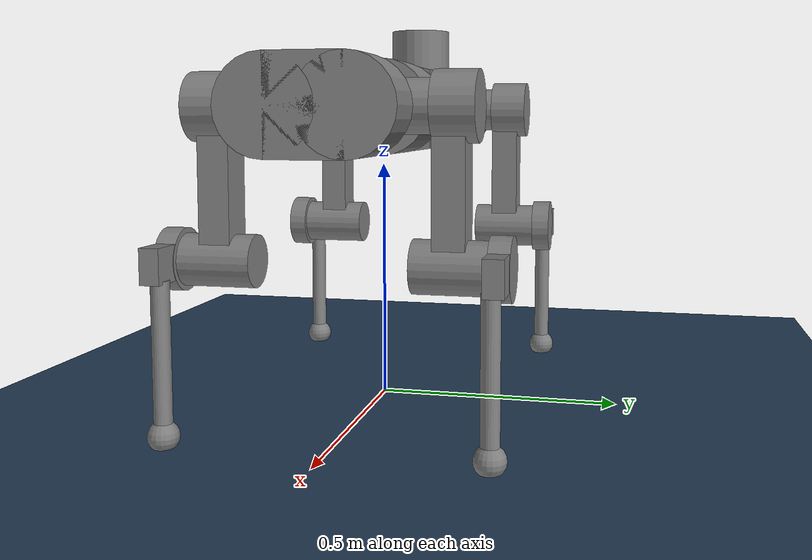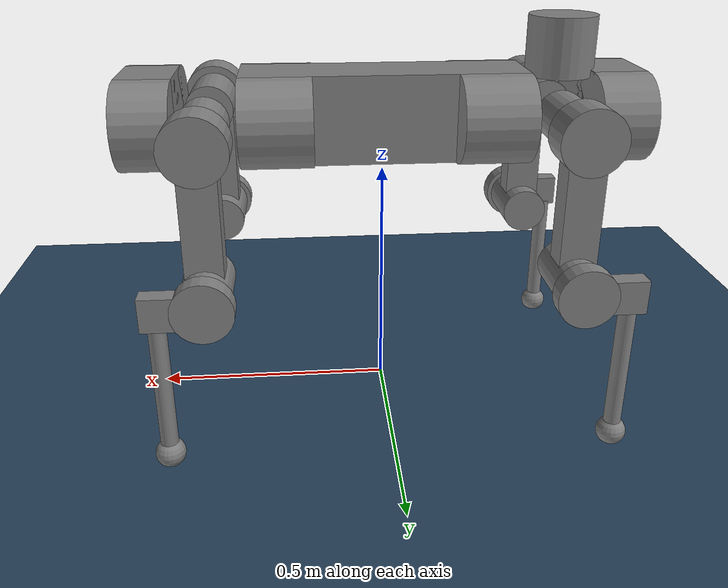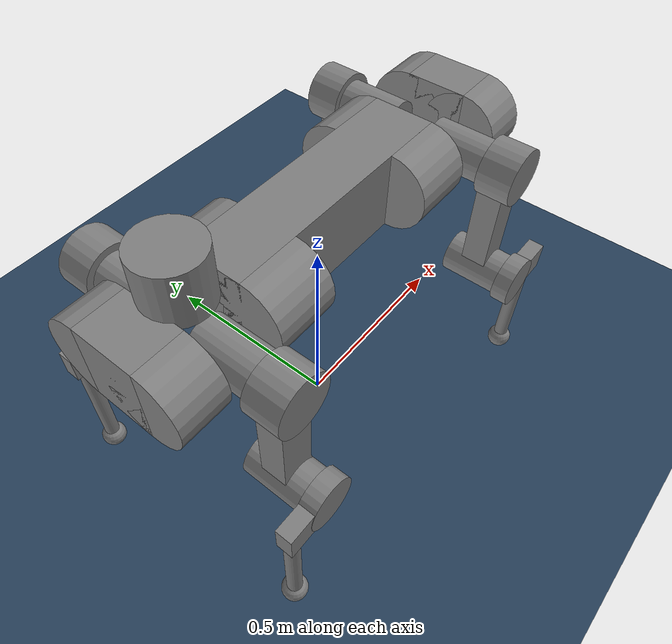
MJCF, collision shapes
<mujoco model="anymal_c scene">
  <include file="anymal_c.xml"/>

  <statistic center="0 0 .3" extent="1.2"/>

  <visual>
    <headlight diffuse="0.6 0.6 0.6" ambient="0.3 0.3 0.3" specular="0 0 0"/>
    <rgba haze="0.15 0.25 0.35 1"/>
    <global azimuth="120" elevation="-20"/>
  </visual>

  <asset>
    <texture type="skybox" builtin="gradient" rgb1="0.3 0.5 0.7" rgb2="0 0 0" width="512" height="3072"/>
    <texture type="2d" name="groundplane" builtin="checker" mark="edge" rgb1="0.2 0.3 0.4" rgb2="0.1 0.2 0.3"
      markrgb="0.8 0.8 0.8" width="300" height="300"/>
    <material name="groundplane" texture="groundplane" texuniform="true" texrepeat="5 5" reflectance="0.2"/>
  </asset>

  <worldbody>
    <light pos="0 0 1.5" dir="0 0 -1" directional="true"/>
    <geom name="floor" size="0 0 0.05" type="plane" material="groundplane"/>
  </worldbody>
</mujoco>

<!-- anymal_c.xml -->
<mujoco model="anymal_c">
  <compiler angle="radian" meshdir="assets" texturedir="assets" autolimits="true"/>

  <option cone="elliptic" impratio="100"/>

  <default>
    <material specular="0" shininess="0.25"/>
    <default class="anymal_c">
      <joint damping="1" frictionloss="0.1"/>

      <default class="visual">
        <geom type="mesh" contype="0" conaffinity="0" group="2"/>
        <default class="visual_zflip">
          <geom quat="0 0 0 1"/>
        </default>
      </default>
      <default class="collision">
        <geom group="3" type="cylinder"/>
        <default class="foot">
          <geom type="sphere" size="0.03" pos="0 0 0.02325" priority="1" solimp="0.015 1 0.03" condim="6"
            friction="0.8 0.02 0.01"/>
        </default>
      </default>

      <default class="affine">
        <joint range="-6.28 6.28"/>
        <motor ctrlrange="-80 80"/>
      </default>
    </default>
  </default>

  <asset>
    <material name="black_plastic" rgba="0.007 0.007 0.007 1"/>
    <material name="green" rgba="0.052 0.178 0.033 1"/>
    <material name="red" rgba="0.178 0.006 0.005 1"/>
    <material name="yellow" rgba="0.178 0.119 0.006 1"/>
    <material name="lwl" rgba="0.8 0.8 0.8 1"/>
    <material name="base" texture="base"/>
    <material name="top_shell" texture="top_shell"/>
    <material name="bottom_shell" texture="bottom_shell"/>
    <material name="hip_l" texture="hip_l"/>
    <material name="thigh" texture="thigh"/>
    <material name="shank_l" texture="shank_l"/>
    <material name="foot" texture="foot"/>
    <material name="hip_r" texture="hip_r"/>
    <material name="shank" texture="shank_r"/>
    <material name="hatch" texture="hatch"/>
    <material name="remote" texture="remote"/>
    <material name="handle" texture="handle"/>
    <material name="face" texture="face"/>
    <material name="depth_camera" texture="depth_camera"/>
    <material name="wide_angle_camera" texture="wide_angle_camera"/>
    <material name="battery" texture="battery"/>
    <material name="lidar_cage" texture="lidar_cage"/>
    <material name="lidar" texture="lidar"/>
    <material name="drive" texture="drive"/>
    <material name="transparent" rgba="1 1 1 0.01" />

    <texture type="2d" name="base" file="base.png"/>
    <texture type="2d" name="top_shell" file="top_shell.png"/>
    <texture type="2d" name="bottom_shell" file="bottom_shell.png"/>
    <texture type="2d" name="remote" file="remote.png"/>
    <texture type="2d" name="hatch" file="hatch.png"/>
    <texture type="2d" name="handle" file="handle.png"/>
    <texture type="2d" name="face" file="face.png"/>
    <texture type="2d" name="battery" file="battery.png"/>
    <texture type="2d" name="lidar_cage" file="lidar_cage.png"/>
    <texture type="2d" name="depth_camera" file="depth_camera.png"/>
    <texture type="2d" name="wide_angle_camera" file="wide_angle_camera.png"/>
    <texture type="2d" name="lidar" file="lidar.png"/>
    <texture type="2d" name="drive" file="drive.png"/>
    <texture type="2d" name="hip_l" file="hip_l.png"/>
    <texture type="2d" name="shank_l" file="shank_l.png"/>
    <texture type="2d" name="foot" file="foot.png"/>
    <texture type="2d" name="thigh" file="thigh.png"/>
    <texture type="2d" name="shank_r" file="shank_r.png"/>
    <texture type="2d" name="hip_r" file="hip_r.png"/>

    <mesh file="base_0.obj"/>
    <mesh file="base_1.obj"/>
    <mesh file="base_2.obj"/>
    <mesh file="base_3.obj"/>
    <mesh file="base_4.obj"/>
    <mesh file="base_5.obj"/>
    <mesh file="top_shell.obj"/>
    <mesh file="bottom_shell.obj"/>
    <mesh file="remote.obj"/>
    <mesh file="handle.obj"/>
    <mesh file="face.obj"/>
    <mesh file="wide_angle_camera.obj"/>
    <mesh file="depth_camera.obj"/>
    <mesh file="battery.obj"/>
    <mesh file="lidar_cage.obj"/>
    <mesh file="lidar.obj"/>
    <mesh file="drive.obj"/>
    <mesh file="hip_l.obj"/>
    <mesh file="thigh.obj"/>
    <mesh file="shank_l.obj"/>
    <mesh file="foot.obj"/>
    <mesh file="hip_r.obj"/>
    <mesh file="hatch.obj"/>
    <mesh file="shank_r.obj"/>
  </asset>

  <worldbody>
    <light name="spotlight" mode="targetbodycom" target="base" pos="0 -1 2" cutoff="30"/>
    <body name="base" pos="0 0 0.62" quat="1 0 0 0" childclass="anymal_c">
      <freejoint/>
      <inertial mass="19.2035" pos="0.0025 0 0.0502071" quat="0.5 0.5 0.5 0.5" diaginertia="0.639559 0.624031 0.217374"/>
      <geom mesh="base_0" material="green" class="visual"/>
      <geom mesh="base_1" material="yellow" class="visual"/>
      <geom mesh="base_2" material="red" class="visual"/>
      <geom mesh="base_3" material="black_plastic" class="visual"/>
      <geom mesh="base_4" material="lwl" class="visual"/>
      <geom mesh="base_5" material="base" class="visual"/>
      <geom class="collision" size="0.29 0.07 0.09" type="box"/>
      <geom class="collision" size="0.09 0.0725" pos="0.2175 0.07 0" quat="1 0 1 0"/>
      <geom class="collision" size="0.09 0.0725" pos="-0.2175 0.07 0" quat="1 0 1 0"/>
      <geom class="collision" size="0.09 0.0725" pos="0.2175 -0.07 0" quat="1 0 1 0"/>
      <geom class="collision" size="0.09 0.0725" pos="-0.2175 -0.07 0" quat="1 0 1 0"/>
      <geom material="top_shell" mesh="top_shell" class="visual"/>
      <geom material="bottom_shell" mesh="bottom_shell" class="visual"/>
      <geom material="remote" mesh="remote" class="visual"/>
      <geom material="handle" mesh="handle" class="visual"/>
      <geom pos="0.4145 0 0" material="face" mesh="face" class="visual"/>
      <geom class="collision" size="0.055 0.07 0.09" pos="0.4695 0 0" type="box"/>
      <geom class="collision" size="0.09 0.055" pos="0.4695 0.07 0" quat="1 0 1 0"/>
      <geom class="collision" size="0.09 0.055" pos="0.4695 -0.07 0" quat="1 0 1 0"/>
      <geom pos="0.46165 0 -0.0292" quat="0.965926 0 0.258819 0" material="depth_camera" mesh="depth_camera"
        class="visual"/>
      <geom pos="0.513 0 0.01497" material="wide_angle_camera" mesh="wide_angle_camera" class="visual"/>
      <geom pos="-0.4145 0 0" material="face" mesh="face" class="visual_zflip"/>
      <geom class="collision" size="0.055 0.07 0.09" pos="-0.4695 0 0" quat="0 0 0 1" type="box"/>
      <geom class="collision" size="0.09 0.055" pos="-0.4695 -0.07 0" quat="0 -1 0 1"/>
      <geom class="collision" size="0.09 0.055" pos="-0.4695 0.07 0" quat="0 -1 0 1"/>
      <geom pos="-0.46165 0 -0.0292" quat="0 -0.258819 0 0.965926" material="depth_camera" mesh="depth_camera"
        class="visual"/>
      <geom pos="-0.513 0 0.01497" material="wide_angle_camera" mesh="wide_angle_camera" class="visual_zflip"/>
      <geom material="battery" mesh="battery" class="visual"/>
      <geom pos="0 0.07646 0.02905" quat="0.683013 -0.183013 0.183013 0.683013" material="depth_camera"
        mesh="depth_camera" class="visual"/>
      <geom pos="0 -0.07646 0.02905" quat="0.683013 0.183013 0.183013 -0.683013" material="depth_camera"
        mesh="depth_camera" class="visual"/>
      <geom pos="-0.364 0 0.0735" material="lidar_cage" mesh="lidar_cage" class="visual"/>
      <geom class="collision" size="0.07 0.06" pos="-0.364 0 0.1335"/>
      <geom pos="-0.364 0 0.1422" quat="1 0 0 -1" material="lidar" mesh="lidar" class="visual"/>
      <geom pos="0.2999 0.104 0" quat="0.258819 0.965926 0 0" material="drive" mesh="drive" class="visual"/>
      <geom pos="0.2999 -0.104 0" quat="0.258819 -0.965926 0 0" material="drive" mesh="drive" class="visual"/>
      <geom pos="-0.2999 0.104 0" quat="0 0 0.965926 -0.258819" material="drive" mesh="drive" class="visual"/>
      <geom pos="-0.2999 -0.104 0" quat="0 0 -0.965926 -0.258819" material="drive" mesh="drive" class="visual"/>
      <geom pos="0.116 0 0.073" material="hatch" mesh="hatch" class="visual"/>

      <site name="imu" pos="0 0 0"/>

      <body name="LF_HIP" pos="0.2999 0.104 0" quat="0.258819 0.965926 0 0">
        <inertial mass="2.781" pos="0.0566606 -0.015294 -0.00829784" quat="-0.127978 0.709783 -0.135278 0.679359"
          diaginertia="0.00585729 0.00491868 0.00329081"/>
        <joint name="LF_HAA" axis="1 0 0" range="-0.72 0.49"/>
        <geom quat="0.258819 -0.965926 0 0" material="hip_l" mesh="hip_l" class="visual"/>
        <geom pos="0.0599 -0.0725816 -0.041905" quat="0.183013 -0.683013 0.683013 0.183013" material="drive"
          mesh="drive" class="visual"/>
        <geom class="collision" size="0.05 0.07" pos="0.0599 -0.0119598 -0.006905"
          quat="-0.353553 -0.612372 0.612372 -0.353553"/>
        <body name="LF_THIGH" pos="0.0599 -0.0725816 -0.041905" quat="0.183013 -0.683013 0.683013 0.183013">
          <inertial mass="3.071" pos="0.0308147 4.64995e-05 -0.245696" quat="0.993166 -0.00515309 -0.0806592 0.0841972"
            diaginertia="0.03025 0.0298943 0.00418465"/>
          <joint name="LF_HFE" axis="1 0 0" range="-9.42478 9.42478"/>
          <geom quat="1 0 0 -1" material="thigh" mesh="thigh" class="visual"/>
          <geom class="collision" size="0.065 0.04" pos="0.04 0 0" quat="0.5 0.5 -0.5 -0.5"/>
          <geom class="collision" size="0.0375 0.03 0.141314" pos="0.03 0 -0.141314" quat="1 0 0 -1" type="box"/>
          <geom pos="0.1003 0 -0.285" material="drive" mesh="drive" class="visual"/>
          <geom class="collision" size="0.05 0.07" pos="0.0303 0 -0.285" quat="1 0 1 0"/>
          <body name="LF_SHANK" pos="0.1003 0 -0.285">
            <inertial mass="0.58842" pos="0.005462 -0.0612528 -0.0806598"
              quat="0.992934 -0.115904 -0.00105487 -0.0254421" diaginertia="0.0101637 0.00923838 0.00111927"/>
            <joint name="LF_KFE" axis="1 0 0" range="-9.42478 9.42478"/>
            <geom quat="1 0 0 -1" material="shank_l" mesh="shank_l" class="visual"/>
            <geom class="collision" size="0.06 0.02" pos="0.02 0 0" quat="0.5 0.5 -0.5 -0.5"/>
            <geom class="collision" size="0.057499 0.03375 0.019" pos="0.02 -0.057499 0" quat="0.5 0.5 -0.5 -0.5"
              type="box"/>
            <geom pos="0.01305 -0.08795 -0.33797" quat="0.382683 0 0 -0.92388" material="foot" mesh="foot"
              class="visual"/>
            <geom class="collision" size="0.0175 0.141252" pos="0.01305 -0.08795 -0.168985" quat="1 0 0 -1"/>
            <geom class="foot" pos="0.01305 -0.08795 -0.31547" quat="1 0 0 -1"/>
            <site name="LF_touch" pos="0.01305 -0.08795 -0.31547" size="0.04" material="transparent"/>
          </body>
        </body>
      </body>
      <body name="RF_HIP" pos="0.2999 -0.104 0" quat="0.258819 -0.965926 0 0">
        <inertial mass="2.781" pos="0.0567633 0.015294 -0.00829784" quat="0.13524 0.679072 0.127985 0.710065"
          diaginertia="0.00585928 0.0049205 0.00329064"/>
        <joint name="RF_HAA" axis="1 0 0" range="-0.49 0.72"/>
        <geom quat="0.258819 0.965926 0 0" material="hip_r" mesh="hip_r" class="visual"/>
        <geom pos="0.0599 0.0725816 -0.041905" quat="0.183013 0.683013 0.683013 -0.183013" material="drive" mesh="drive"
          class="visual"/>
        <geom class="collision" size="0.05 0.07" pos="0.0599 0.0119598 -0.006905"
          quat="-0.353553 0.612372 0.612372 0.353553"/>
        <body name="RF_THIGH" pos="0.0599 0.0725816 -0.041905" quat="0.183013 0.683013 0.683013 -0.183013">
          <inertial mass="3.071" pos="0.0308147 4.64995e-05 -0.245696" quat="0.992775 -0.00512735 -0.0806685 0.0886811"
            diaginertia="0.0302511 0.0298933 0.0041845"/>
          <joint name="RF_HFE" axis="-1 0 0" range="-9.42478 9.42478"/>
          <geom quat="1 0 0 -1" material="thigh" mesh="thigh" class="visual"/>
          <geom class="collision" size="0.065 0.04" pos="0.04 0 0" quat="0.5 0.5 0.5 0.5"/>
          <geom class="collision" size="0.0375 0.03 0.141314" pos="0.03 0 -0.141314" quat="1 0 0 1" type="box"/>
          <geom pos="0.1003 0 -0.285" material="drive" mesh="drive" class="visual"/>
          <geom class="collision" size="0.05 0.07" pos="0.0303 0 -0.285" quat="1 0 1 0"/>
          <body name="RF_SHANK" pos="0.1003 0 -0.285">
            <inertial mass="0.58842" pos="0.005462 0.0612528 -0.0806598" quat="0.992934 0.115904 -0.00105487 0.0254421"
              diaginertia="0.0101637 0.00923838 0.00111927"/>
            <joint name="RF_KFE" axis="-1 0 0" range="-9.42478 9.42478"/>
            <geom quat="1 0 0 1" material="shank" mesh="shank_r" class="visual"/>
            <geom class="collision" size="0.06 0.02" pos="0.02 0 0" quat="0.5 0.5 0.5 0.5"/>
            <geom class="collision" size="0.057499 0.03375 0.019" pos="0.02 0.057499 0" quat="0.5 0.5 0.5 0.5"
              type="box"/>
            <geom pos="0.01305 0.08795 -0.33797" quat="0.382683 0 0 0.92388" material="foot" mesh="foot" class="visual"/>
            <geom class="collision" size="0.0175 0.141252" pos="0.01305 0.08795 -0.168985" quat="1 0 0 1"/>
            <geom class="foot" pos="0.01305 0.08795 -0.31547" quat="1 0 0 1"/>
            <site name="RF_touch" pos="0.01305 0.08795 -0.31547" size="0.04" material="transparent"/>
          </body>
        </body>
      </body>
      <body name="LH_HIP" pos="-0.2999 0.104 0" quat="0 0 0.965926 -0.258819">
        <inertial mass="2.781" pos="0.0567633 0.015294 -0.00829784" quat="0.13524 0.679072 0.127985 0.710065"
          diaginertia="0.00585928 0.0049205 0.00329064"/>
        <joint name="LH_HAA" axis="-1 0 0" range="-0.72 0.49"/>
        <geom quat="-0.258819 -0.965926 0 0" material="hip_r" mesh="hip_r" class="visual"/>
        <geom pos="0.0599 0.0725816 -0.041905" quat="0.183013 0.683013 0.683013 -0.183013" material="drive" mesh="drive"
          class="visual"/>
        <geom class="collision" size="0.05 0.07" pos="0.0599 0.0119598 -0.006905"
          quat="-0.353553 0.612372 0.612372 0.353553"/>
        <body name="LH_THIGH" pos="0.0599 0.0725816 -0.041905" quat="0.183013 0.683013 0.683013 -0.183013">
          <inertial mass="3.071" pos="0.0308147 4.64995e-05 -0.245696" quat="0.992775 -0.00512735 -0.0806685 0.0886811"
            diaginertia="0.0302511 0.0298933 0.0041845"/>
          <joint name="LH_HFE" axis="1 0 0" range="-9.42478 9.42478"/>
          <geom quat="1 0 0 -1" material="thigh" mesh="thigh" class="visual"/>
          <geom class="collision" size="0.065 0.04" pos="0.04 0 0" quat="0.5 0.5 -0.5 -0.5"/>
          <geom class="collision" size="0.0375 0.03 0.141314" pos="0.03 0 -0.141314" quat="1 0 0 -1" type="box"/>
          <geom pos="0.1003 0 -0.285" material="drive" mesh="drive" class="visual"/>
          <geom class="collision" size="0.05 0.07" pos="0.0303 0 -0.285" quat="1 0 1 0"/>
          <body name="LH_SHANK" pos="0.1003 0 -0.285">
            <inertial mass="0.58842" pos="0.005462 0.0612528 -0.0806598" quat="0.992934 0.115904 -0.00105487 0.0254421"
              diaginertia="0.0101637 0.00923838 0.00111927"/>
            <joint name="LH_KFE" axis="1 0 0" range="-9.42478 9.42478"/>
            <geom quat="-1 0 0 -1" material="shank" mesh="shank_r" class="visual"/>
            <geom class="collision" size="0.06 0.02" pos="0.02 0 0" quat="0.5 0.5 -0.5 -0.5"/>
            <geom class="collision" size="0.057499 0.03375 0.019" pos="0.02 0.057499 0" quat="0.5 0.5 -0.5 -0.5"
              type="box"/>
            <geom pos="0.01305 0.08795 -0.33797" quat="-0.382683 0 0 -0.92388" material="foot" mesh="foot"
              class="visual"/>
            <geom class="collision" size="0.0175 0.141252" pos="0.01305 0.08795 -0.168985" quat="1 0 0 -1"/>
            <geom class="foot" pos="0.01305 0.08795 -0.31547" quat="1 0 0 -1"/>
            <site name="RL_touch" pos="0.01305 0.08795 -0.31547" size="0.04" material="transparent"/>
          </body>
        </body>
      </body>
      <body name="RH_HIP" pos="-0.2999 -0.104 0" quat="0 0 -0.965926 -0.258819">
        <inertial mass="2.781" pos="0.0566606 -0.015294 -0.00829784" quat="-0.127978 0.709783 -0.135278 0.679359"
          diaginertia="0.00585729 0.00491868 0.00329081"/>
        <joint name="RH_HAA" axis="-1 0 0" range="-0.49 0.72"/>
        <geom quat="-0.258819 0.965926 0 0" material="hip_l" mesh="hip_l" class="visual"/>
        <geom pos="0.0599 -0.0725816 -0.041905" quat="-0.183013 0.683013 -0.683013 -0.183013" material="drive"
          mesh="drive" class="visual"/>
        <geom class="collision" size="0.05 0.07" pos="0.0599 -0.0119598 -0.006905"
          quat="0.353553 0.612372 -0.612372 0.353553"/>
        <body name="RH_THIGH" pos="0.0599 -0.0725816 -0.041905" quat="-0.183013 0.683013 -0.683013 -0.183013">
          <inertial mass="3.071" pos="0.0308147 4.64995e-05 -0.245696" quat="0.993166 -0.00515309 -0.0806592 0.0841972"
            diaginertia="0.03025 0.0298943 0.00418465"/>
          <joint name="RH_HFE" axis="-1 0 0" range="-9.42478 9.42478"/>
          <geom quat="1 0 0 -1" material="thigh" mesh="thigh" class="visual"/>
          <geom class="collision" size="0.065 0.04" pos="0.04 0 0" quat="0.5 0.5 0.5 0.5"/>
          <geom class="collision" size="0.0375 0.03 0.141314" pos="0.03 0 -0.141314" quat="1 0 0 1" type="box"/>
          <geom pos="0.1003 0 -0.285" material="drive" mesh="drive" class="visual"/>
          <geom class="collision" size="0.05 0.07" pos="0.0303 0 -0.285" quat="1 0 1 0"/>
          <body name="RH_SHANK" pos="0.1003 0 -0.285">
            <inertial mass="0.58842" pos="0.005462 -0.0612528 -0.0806598"
              quat="0.992934 -0.115904 -0.00105487 -0.0254421" diaginertia="0.0101637 0.00923838 0.00111927"/>
            <joint name="RH_KFE" axis="-1 0 0" range="-9.42478 9.42478"/>
            <geom quat="1 0 0 -1" material="shank_l" mesh="shank_l" class="visual"/>
            <geom class="collision" size="0.06 0.02" pos="0.02 0 0" quat="0.5 0.5 0.5 0.5"/>
            <geom class="collision" size="0.057499 0.03375 0.019" pos="0.02 -0.057499 0" quat="0.5 0.5 0.5 0.5"
              type="box"/>
            <geom pos="0.01305 -0.08795 -0.33797" quat="0.382683 0 0 -0.92388" material="foot" mesh="foot"
              class="visual"/>
            <geom class="collision" size="0.0175 0.141252" pos="0.01305 -0.08795 -0.168985" quat="1 0 0 1"/>
            <geom class="foot" pos="0.01305 -0.08795 -0.31547" quat="1 0 0 1"/>
            <site name="RR_touch" pos="0.01305 -0.08795 -0.31547" size="0.04" material="transparent"/>
          </body>
        </body>
      </body>
    </body>
  </worldbody>

  <contact>
    <exclude body1="base" body2="LF_THIGH"/>
    <exclude body1="base" body2="RF_THIGH"/>
    <exclude body1="base" body2="LH_THIGH"/>
    <exclude body1="base" body2="RH_THIGH"/>
  </contact>

  <actuator>
    <motor class="affine" name="FR_hip" joint="RF_HAA" />
    <motor class="affine" name="FR_thigh" joint="RF_HFE" />
    <motor class="affine" name="FR_calf" joint="RF_KFE" />
    <motor class="affine" name="FL_hip" joint="LF_HAA" />
    <motor class="affine" name="FL_thigh" joint="LF_HFE" />
    <motor class="affine" name="FL_calf" joint="LF_KFE" />
    <motor class="affine" name="RR_hip" joint="RH_HAA" />
    <motor class="affine" name="RR_thigh" joint="RH_HFE" />
    <motor class="affine" name="RR_calf" joint="RH_KFE" />
    <motor class="affine" name="RL_hip" joint="LH_HAA" />
    <motor class="affine" name="RL_thigh" joint="LH_HFE" />
    <motor class="affine" name="RL_calf" joint="LH_KFE" />
  </actuator>

  <sensor>
    <jointpos name="FR_hip_pos" joint="RF_HAA" />
    <jointpos name="FR_thigh_pos" joint="RF_HFE" />
    <jointpos name="FR_calf_pos" joint="RF_KFE" />
    <jointpos name="FL_hip_pos" joint="LF_HAA" />
    <jointpos name="FL_thigh_pos" joint="LF_HFE" />
    <jointpos name="FL_calf_pos" joint="LF_KFE" />
    <jointpos name="RR_hip_pos" joint="RH_HAA" />
    <jointpos name="RR_thigh_pos" joint="RH_HFE" />
    <jointpos name="RR_calf_pos" joint="RH_KFE" />
    <jointpos name="RL_hip_pos" joint="LH_HAA" />
    <jointpos name="RL_thigh_pos" joint="LH_HFE" />
    <jointpos name="RL_calf_pos" joint="LH_KFE" />

    <jointvel name="FR_hip_vel" joint="RF_HAA" />
    <jointvel name="FR_thigh_vel" joint="RF_HFE" />
    <jointvel name="FR_calf_vel" joint="RF_KFE" />
    <jointvel name="FL_hip_vel" joint="LF_HAA" />
    <jointvel name="FL_thigh_vel" joint="LF_HFE" />
    <jointvel name="FL_calf_vel" joint="LF_KFE" />
    <jointvel name="RR_hip_vel" joint="RH_HAA" />
    <jointvel name="RR_thigh_vel" joint="RH_HFE" />
    <jointvel name="RR_calf_vel" joint="RH_KFE" />
    <jointvel name="RL_hip_vel" joint="LH_HAA" />
    <jointvel name="RL_thigh_vel" joint="LH_HFE" />
    <jointvel name="RL_calf_vel" joint="LH_KFE" />

    <jointactuatorfrc name="FR_hip_torque" joint="RF_HAA" noise="0.01" />
    <jointactuatorfrc name="FR_thigh_torque" joint="RF_HFE" noise="0.01" />
    <jointactuatorfrc name="FR_calf_torque" joint="RF_KFE" noise="0.01" />
    <jointactuatorfrc name="FL_hip_torque" joint="LF_HAA" noise="0.01" />
    <jointactuatorfrc name="FL_thigh_torque" joint="LF_HFE" noise="0.01" />
    <jointactuatorfrc name="FL_calf_torque" joint="LF_KFE" noise="0.01" />
    <jointactuatorfrc name="RR_hip_torque" joint="RH_HAA" noise="0.01" />
    <jointactuatorfrc name="RR_thigh_torque" joint="RH_HFE" noise="0.01" />
    <jointactuatorfrc name="RR_calf_torque" joint="RH_KFE" noise="0.01" />
    <jointactuatorfrc name="RL_hip_torque" joint="LH_HAA" noise="0.01" />
    <jointactuatorfrc name="RL_thigh_torque" joint="LH_HFE" noise="0.01" />
    <jointactuatorfrc name="RL_calf_torque" joint="LH_KFE" noise="0.01" />

    <framequat name="imu_quat" objtype="site" objname="imu" />
    <gyro name="imu_gyro" site="imu" />
    <accelerometer name="imu_acc" site="imu" />

    <framepos name="frame_pos" objtype="site" objname="imu" />
    <framelinvel name="frame_vel" objtype="site" objname="imu" />

    <touch name="RF_touch" site="RF_touch" />
    <touch name="LF_touch" site="LF_touch" />
    <touch name="RR_touch" site="RR_touch" />
    <touch name="RL_touch" site="RL_touch" />
  </sensor>
</mujoco>
